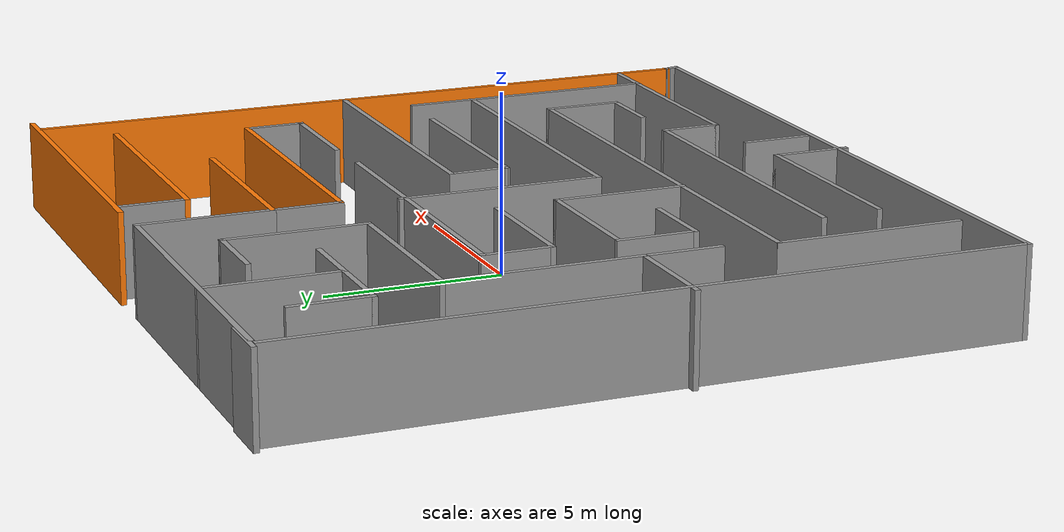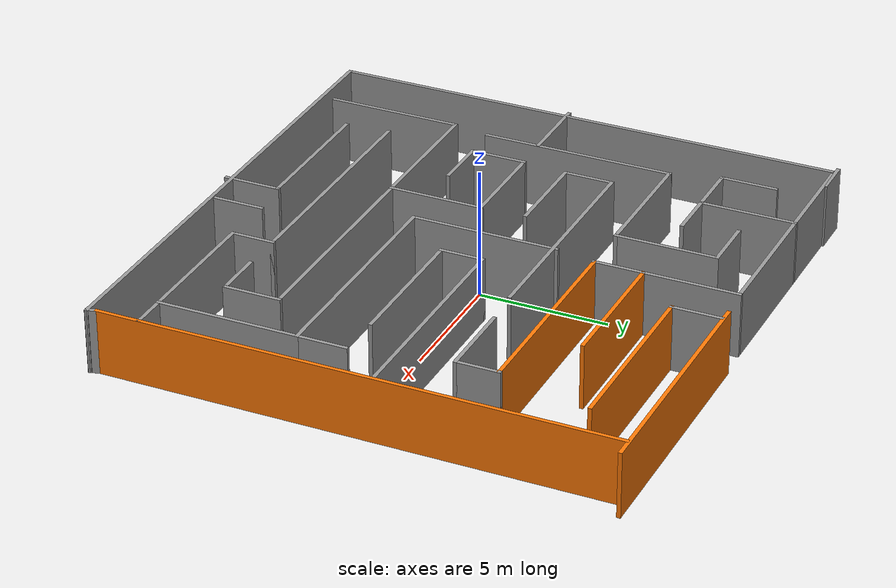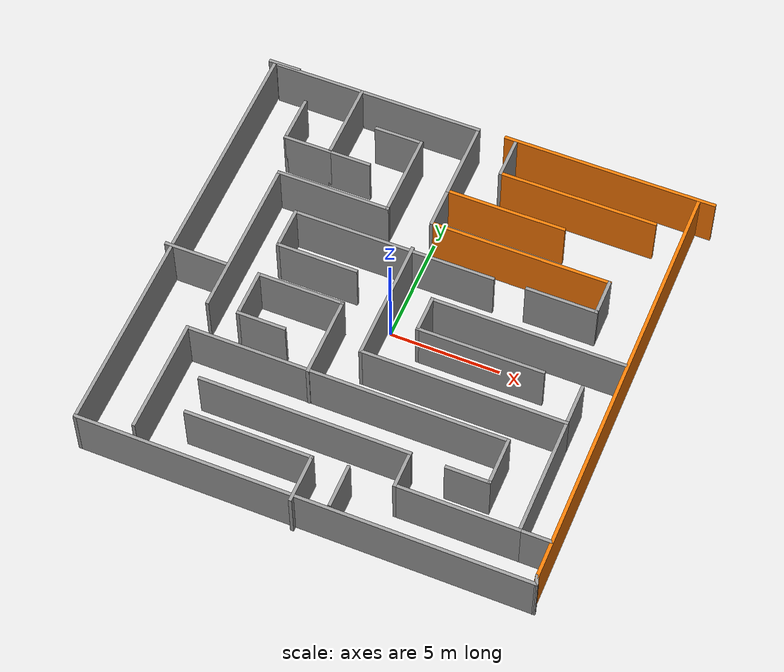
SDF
<?xml version='1.0'?>
<sdf version='1.7'>
  <model name='Untitled'>
    <pose>0.494496 -0.131558 0 0 -0 0</pose>
    <link name='Wall_10'>
      <collision name='Wall_10_Collision'>
        <geometry>
          <box>
            <size>20.25 0.15 2.5</size>
          </box>
        </geometry>
        <pose>0 0 1.25 0 -0 0</pose>
      </collision>
      <visual name='Wall_10_Visual'>
        <pose>0 0 1.25 0 -0 0</pose>
        <geometry>
          <box>
            <size>20.25 0.15 2.5</size>
          </box>
        </geometry>
        <material>
          <script>
            <uri>file://media/materials/scripts/gazebo.material</uri>
            <name>Gazebo/Grey</name>
          </script>
          <ambient>1 1 1 1</ambient>
        </material>
        <meta>
          <layer>0</layer>
        </meta>
      </visual>
      <pose>-0.173601 -9.90193 0 0 -0 3.14159</pose>
    </link>
    <link name='Wall_11'>
      <collision name='Wall_11_Collision'>
        <geometry>
          <box>
            <size>20 0.15 2.5</size>
          </box>
        </geometry>
        <pose>0 0 1.25 0 -0 0</pose>
      </collision>
      <visual name='Wall_11_Visual'>
        <pose>0 0 1.25 0 -0 0</pose>
        <geometry>
          <box>
            <size>20 0.15 2.5</size>
          </box>
        </geometry>
        <material>
          <script>
            <uri>file://media/materials/scripts/gazebo.material</uri>
            <name>Gazebo/Grey</name>
          </script>
          <ambient>1 1 1 1</ambient>
        </material>
        <meta>
          <layer>0</layer>
        </meta>
      </visual>
      <pose>-10.2236 0.023072 0 0 -0 1.5708</pose>
    </link>
    <link name='Wall_13'>
      <collision name='Wall_13_Collision'>
        <geometry>
          <box>
            <size>1.5 0.15 2.5</size>
          </box>
        </geometry>
        <pose>0 0 1.25 0 -0 0</pose>
      </collision>
      <visual name='Wall_13_Visual'>
        <pose>0 0 1.25 0 -0 0</pose>
        <geometry>
          <box>
            <size>1.5 0.15 2.5</size>
          </box>
        </geometry>
        <material>
          <script>
            <uri>file://media/materials/scripts/gazebo.material</uri>
            <name>Gazebo/Grey</name>
          </script>
          <ambient>1 1 1 1</ambient>
        </material>
        <meta>
          <layer>0</layer>
        </meta>
      </visual>
      <pose>-9.77571 10.1069 0 0 -0 0</pose>
    </link>
    <link name='Wall_15'>
      <collision name='Wall_15_Collision'>
        <geometry>
          <box>
            <size>3.75 0.15 2.5</size>
          </box>
        </geometry>
        <pose>0 0 1.25 0 -0 0</pose>
      </collision>
      <visual name='Wall_15_Visual'>
        <pose>0 0 1.25 0 -0 0</pose>
        <geometry>
          <box>
            <size>3.75 0.15 2.5</size>
          </box>
        </geometry>
        <material>
          <script>
            <uri>file://media/materials/scripts/gazebo.material</uri>
            <name>Gazebo/Grey</name>
          </script>
          <ambient>1 1 1 1</ambient>
        </material>
        <meta>
          <layer>0</layer>
        </meta>
      </visual>
      <pose>-5.99301 8.23615 0 0 -0 -1.5708</pose>
    </link>
    <link name='Wall_16'>
      <collision name='Wall_16_Collision'>
        <geometry>
          <box>
            <size>2 0.15 2.5</size>
          </box>
        </geometry>
        <pose>0 0 1.25 0 -0 0</pose>
      </collision>
      <visual name='Wall_16_Visual'>
        <pose>0 0 1.25 0 -0 0</pose>
        <geometry>
          <box>
            <size>2 0.15 2.5</size>
          </box>
        </geometry>
        <material>
          <script>
            <uri>file://media/materials/scripts/gazebo.material</uri>
            <name>Gazebo/Grey</name>
          </script>
          <ambient>1 1 1 1</ambient>
        </material>
        <meta>
          <layer>0</layer>
        </meta>
      </visual>
      <pose>-5.06801 6.43615 0 0 -0 0</pose>
    </link>
    <link name='Wall_18'>
      <collision name='Wall_18_Collision'>
        <geometry>
          <box>
            <size>2.25 0.15 2.5</size>
          </box>
        </geometry>
        <pose>0 0 1.25 0 -0 0</pose>
      </collision>
      <visual name='Wall_18_Visual'>
        <pose>0 0 1.25 0 -0 0</pose>
        <geometry>
          <box>
            <size>2.25 0.15 2.5</size>
          </box>
        </geometry>
        <material>
          <script>
            <uri>file://media/materials/scripts/gazebo.material</uri>
            <name>Gazebo/Grey</name>
          </script>
          <ambient>1 1 1 1</ambient>
        </material>
        <meta>
          <layer>0</layer>
        </meta>
      </visual>
      <pose>-7.04301 6.43615 0 0 -0 3.14159</pose>
    </link>
    <link name='Wall_19'>
      <collision name='Wall_19_Collision'>
        <geometry>
          <box>
            <size>2.25 0.15 2.5</size>
          </box>
        </geometry>
        <pose>0 0 1.25 0 -0 0</pose>
      </collision>
      <visual name='Wall_19_Visual'>
        <pose>0 0 1.25 0 -0 0</pose>
        <geometry>
          <box>
            <size>2.25 0.15 2.5</size>
          </box>
        </geometry>
        <material>
          <script>
            <uri>file://media/materials/scripts/gazebo.material</uri>
            <name>Gazebo/Grey</name>
          </script>
          <ambient>1 1 1 1</ambient>
        </material>
        <meta>
          <layer>0</layer>
        </meta>
      </visual>
      <pose>-8.09301 7.48615 0 0 -0 1.5708</pose>
    </link>
    <link name='Wall_21'>
      <collision name='Wall_21_Collision'>
        <geometry>
          <box>
            <size>2.25 0.15 2.5</size>
          </box>
        </geometry>
        <pose>0 0 1.25 0 -0 0</pose>
      </collision>
      <visual name='Wall_21_Visual'>
        <pose>0 0 1.25 0 -0 0</pose>
        <geometry>
          <box>
            <size>2.25 0.15 2.5</size>
          </box>
        </geometry>
        <material>
          <script>
            <uri>file://media/materials/scripts/gazebo.material</uri>
            <name>Gazebo/Grey</name>
          </script>
          <ambient>1 1 1 1</ambient>
        </material>
        <meta>
          <layer>0</layer>
        </meta>
      </visual>
      <pose>-3.52787 8.40873 0 0 -0 0</pose>
    </link>
    <link name='Wall_22'>
      <collision name='Wall_22_Collision'>
        <geometry>
          <box>
            <size>4 0.15 2.5</size>
          </box>
        </geometry>
        <pose>0 0 1.25 0 -0 0</pose>
      </collision>
      <visual name='Wall_22_Visual'>
        <pose>0 0 1.25 0 -0 0</pose>
        <geometry>
          <box>
            <size>4 0.15 2.5</size>
          </box>
        </geometry>
        <material>
          <script>
            <uri>file://media/materials/scripts/gazebo.material</uri>
            <name>Gazebo/Grey</name>
          </script>
          <ambient>1 1 1 1</ambient>
        </material>
        <meta>
          <layer>0</layer>
        </meta>
      </visual>
      <pose>-2.47787 6.48373 0 0 -0 -1.5708</pose>
    </link>
    <link name='Wall_23'>
      <collision name='Wall_23_Collision'>
        <geometry>
          <box>
            <size>5.25 0.15 2.5</size>
          </box>
        </geometry>
        <pose>0 0 1.25 0 -0 0</pose>
      </collision>
      <visual name='Wall_23_Visual'>
        <pose>0 0 1.25 0 -0 0</pose>
        <geometry>
          <box>
            <size>5.25 0.15 2.5</size>
          </box>
        </geometry>
        <material>
          <script>
            <uri>file://media/materials/scripts/gazebo.material</uri>
            <name>Gazebo/Grey</name>
          </script>
          <ambient>1 1 1 1</ambient>
        </material>
        <meta>
          <layer>0</layer>
        </meta>
      </visual>
      <pose>-5.02787 4.55873 0 0 -0 3.14159</pose>
    </link>
    <link name='Wall_24'>
      <collision name='Wall_24_Collision'>
        <geometry>
          <box>
            <size>7.5 0.15 2.5</size>
          </box>
        </geometry>
        <pose>0 0 1.25 0 -0 0</pose>
      </collision>
      <visual name='Wall_24_Visual'>
        <pose>0 0 1.25 0 -0 0</pose>
        <geometry>
          <box>
            <size>7.5 0.15 2.5</size>
          </box>
        </geometry>
        <material>
          <script>
            <uri>file://media/materials/scripts/gazebo.material</uri>
            <name>Gazebo/Grey</name>
          </script>
          <ambient>1 1 1 1</ambient>
        </material>
        <meta>
          <layer>0</layer>
        </meta>
      </visual>
      <pose>-7.57787 0.883734 0 0 -0 -1.5708</pose>
    </link>
    <link name='Wall_28'>
      <collision name='Wall_28_Collision'>
        <geometry>
          <box>
            <size>3 0.15 2.5</size>
          </box>
        </geometry>
        <pose>0 0 1.25 0 -0 0</pose>
      </collision>
      <visual name='Wall_28_Visual'>
        <pose>0 0 1.25 0 -0 0</pose>
        <geometry>
          <box>
            <size>3 0.15 2.5</size>
          </box>
        </geometry>
        <material>
          <script>
            <uri>file://media/materials/scripts/gazebo.material</uri>
            <name>Gazebo/Grey</name>
          </script>
          <ambient>1 1 1 1</ambient>
        </material>
        <meta>
          <layer>0</layer>
        </meta>
      </visual>
      <pose>-9.04542 -0.718927 0 0 -0 3.14159</pose>
    </link>
    <link name='Wall_3'>
      <collision name='Wall_3_Collision'>
        <geometry>
          <box>
            <size>9.75 0.15 2.5</size>
          </box>
        </geometry>
        <pose>0 0 1.25 0 -0 0</pose>
      </collision>
      <visual name='Wall_3_Visual'>
        <pose>0 0 1.25 0 -0 0</pose>
        <geometry>
          <box>
            <size>9.75 0.15 2.5</size>
          </box>
        </geometry>
        <material>
          <script>
            <uri>file://media/materials/scripts/gazebo.material</uri>
            <name>Gazebo/Grey</name>
          </script>
          <ambient>1 1 1 1</ambient>
        </material>
        <meta>
          <layer>0</layer>
        </meta>
      </visual>
      <pose>-5.22616 10.0361 0 0 -0 0</pose>
    </link>
    <link name='Wall_31'>
      <collision name='Wall_31_Collision'>
        <geometry>
          <box>
            <size>3.75 0.15 2.5</size>
          </box>
        </geometry>
        <pose>0 0 1.25 0 -0 0</pose>
      </collision>
      <visual name='Wall_31_Visual'>
        <pose>0 0 1.25 0 -0 0</pose>
        <geometry>
          <box>
            <size>3.75 0.15 2.5</size>
          </box>
        </geometry>
        <material>
          <script>
            <uri>file://media/materials/scripts/gazebo.material</uri>
            <name>Gazebo/Grey</name>
          </script>
          <ambient>1 1 1 1</ambient>
        </material>
        <meta>
          <layer>0</layer>
        </meta>
      </visual>
      <pose>-0.426163 8.23615 0 0 -0 -1.5708</pose>
    </link>
    <link name='Wall_32'>
      <collision name='Wall_32_Collision'>
        <geometry>
          <box>
            <size>5.5 0.15 2.5</size>
          </box>
        </geometry>
        <pose>0 0 1.25 0 -0 0</pose>
      </collision>
      <visual name='Wall_32_Visual'>
        <pose>0 0 1.25 0 -0 0</pose>
        <geometry>
          <box>
            <size>5.5 0.15 2.5</size>
          </box>
        </geometry>
        <material>
          <script>
            <uri>file://media/materials/scripts/gazebo.material</uri>
            <name>Gazebo/Grey</name>
          </script>
          <ambient>0.996078 0.47451 0.0196078 1</ambient>
        </material>
        <meta>
          <layer>0</layer>
        </meta>
      </visual>
      <pose>2.24884 6.43615 0 0 -0 0</pose>
    </link>
    <link name='Wall_34'>
      <collision name='Wall_34_Collision'>
        <geometry>
          <box>
            <size>2 0.15 2.5</size>
          </box>
        </geometry>
        <pose>0 0 1.25 0 -0 0</pose>
      </collision>
      <visual name='Wall_34_Visual'>
        <pose>0 0 1.25 0 -0 0</pose>
        <geometry>
          <box>
            <size>2 0.15 2.5</size>
          </box>
        </geometry>
        <material>
          <script>
            <uri>file://media/materials/scripts/gazebo.material</uri>
            <name>Gazebo/Grey</name>
          </script>
          <ambient>1 1 1 1</ambient>
        </material>
        <meta>
          <layer>0</layer>
        </meta>
      </visual>
      <pose>-0.426163 5.51115 0 0 -0 -1.5708</pose>
    </link>
    <link name='Wall_37'>
      <collision name='Wall_37_Collision'>
        <geometry>
          <box>
            <size>8.25 0.15 2.5</size>
          </box>
        </geometry>
        <pose>0 0 1.25 0 -0 0</pose>
      </collision>
      <visual name='Wall_37_Visual'>
        <pose>0 0 1.25 0 -0 0</pose>
        <geometry>
          <box>
            <size>8.25 0.15 2.5</size>
          </box>
        </geometry>
        <material>
          <script>
            <uri>file://media/materials/scripts/gazebo.material</uri>
            <name>Gazebo/Grey</name>
          </script>
          <ambient>0.996078 0.47451 0.0196078 1</ambient>
        </material>
        <meta>
          <layer>0</layer>
        </meta>
      </visual>
      <pose>3.62384 4.58615 0 0 -0 0</pose>
    </link>
    <link name='Wall_38'>
      <collision name='Wall_38_Collision'>
        <geometry>
          <box>
            <size>1.75 0.15 2.5</size>
          </box>
        </geometry>
        <pose>0 0 1.25 0 -0 0</pose>
      </collision>
      <visual name='Wall_38_Visual'>
        <pose>0 0 1.25 0 -0 0</pose>
        <geometry>
          <box>
            <size>1.75 0.15 2.5</size>
          </box>
        </geometry>
        <material>
          <script>
            <uri>file://media/materials/scripts/gazebo.material</uri>
            <name>Gazebo/Grey</name>
          </script>
          <ambient>1 1 1 1</ambient>
        </material>
        <meta>
          <layer>0</layer>
        </meta>
      </visual>
      <pose>7.67384 3.78615 0 0 -0 -1.5708</pose>
    </link>
    <link name='Wall_39'>
      <collision name='Wall_39_Collision'>
        <geometry>
          <box>
            <size>3.25 0.15 2.5</size>
          </box>
        </geometry>
        <pose>0 0 1.25 0 -0 0</pose>
      </collision>
      <visual name='Wall_39_Visual'>
        <pose>0 0 1.25 0 -0 0</pose>
        <geometry>
          <box>
            <size>3.25 0.15 2.5</size>
          </box>
        </geometry>
        <material>
          <script>
            <uri>file://media/materials/scripts/gazebo.material</uri>
            <name>Gazebo/Grey</name>
          </script>
          <ambient>1 1 1 1</ambient>
        </material>
        <meta>
          <layer>0</layer>
        </meta>
      </visual>
      <pose>6.12384 2.98615 0 0 -0 3.14159</pose>
    </link>
    <link name='Wall_41'>
      <collision name='Wall_41_Collision'>
        <geometry>
          <box>
            <size>3.75 0.15 2.5</size>
          </box>
        </geometry>
        <pose>0 0 1.25 0 -0 0</pose>
      </collision>
      <visual name='Wall_41_Visual'>
        <pose>0 0 1.25 0 -0 0</pose>
        <geometry>
          <box>
            <size>3.75 0.15 2.5</size>
          </box>
        </geometry>
        <material>
          <script>
            <uri>file://media/materials/scripts/gazebo.material</uri>
            <name>Gazebo/Grey</name>
          </script>
          <ambient>1 1 1 1</ambient>
        </material>
        <meta>
          <layer>0</layer>
        </meta>
      </visual>
      <pose>-4.25516 1.05 0 0 -0 3.14159</pose>
    </link>
    <link name='Wall_42'>
      <collision name='Wall_42_Collision'>
        <geometry>
          <box>
            <size>2 0.15 2.5</size>
          </box>
        </geometry>
        <pose>0 0 1.25 0 -0 0</pose>
      </collision>
      <visual name='Wall_42_Visual'>
        <pose>0 0 1.25 0 -0 0</pose>
        <geometry>
          <box>
            <size>2 0.15 2.5</size>
          </box>
        </geometry>
        <material>
          <script>
            <uri>file://media/materials/scripts/gazebo.material</uri>
            <name>Gazebo/Grey</name>
          </script>
          <ambient>1 1 1 1</ambient>
        </material>
        <meta>
          <layer>0</layer>
        </meta>
      </visual>
      <pose>-6.05516 1.975 0 0 -0 1.5708</pose>
    </link>
    <link name='Wall_43'>
      <collision name='Wall_43_Collision'>
        <geometry>
          <box>
            <size>9.25 0.15 2.5</size>
          </box>
        </geometry>
        <pose>0 0 1.25 0 -0 0</pose>
      </collision>
      <visual name='Wall_43_Visual'>
        <pose>0 0 1.25 0 -0 0</pose>
        <geometry>
          <box>
            <size>9.25 0.15 2.5</size>
          </box>
        </geometry>
        <material>
          <script>
            <uri>file://media/materials/scripts/gazebo.material</uri>
            <name>Gazebo/Grey</name>
          </script>
          <ambient>1 1 1 1</ambient>
        </material>
        <meta>
          <layer>0</layer>
        </meta>
      </visual>
      <pose>-1.50516 2.9 0 0 -0 0</pose>
    </link>
    <link name='Wall_45'>
      <collision name='Wall_45_Collision'>
        <geometry>
          <box>
            <size>5.75 0.15 2.5</size>
          </box>
        </geometry>
        <pose>0 0 1.25 0 -0 0</pose>
      </collision>
      <visual name='Wall_45_Visual'>
        <pose>0 0 1.25 0 -0 0</pose>
        <geometry>
          <box>
            <size>5.75 0.15 2.5</size>
          </box>
        </geometry>
        <material>
          <script>
            <uri>file://media/materials/scripts/gazebo.material</uri>
            <name>Gazebo/Grey</name>
          </script>
          <ambient>1 1 1 1</ambient>
        </material>
        <meta>
          <layer>0</layer>
        </meta>
      </visual>
      <pose>-0.686232 0.231197 0 0 -0 -1.5708</pose>
    </link>
    <link name='Wall_46'>
      <collision name='Wall_46_Collision'>
        <geometry>
          <box>
            <size>9.25 0.15 2.5</size>
          </box>
        </geometry>
        <pose>0 0 1.25 0 -0 0</pose>
      </collision>
      <visual name='Wall_46_Visual'>
        <pose>0 0 1.25 0 -0 0</pose>
        <geometry>
          <box>
            <size>9.25 0.15 2.5</size>
          </box>
        </geometry>
        <material>
          <script>
            <uri>file://media/materials/scripts/gazebo.material</uri>
            <name>Gazebo/Grey</name>
          </script>
          <ambient>1 1 1 1</ambient>
        </material>
        <meta>
          <layer>0</layer>
        </meta>
      </visual>
      <pose>3.86377 -2.5688 0 0 -0 0</pose>
    </link>
    <link name='Wall_47'>
      <collision name='Wall_47_Collision'>
        <geometry>
          <box>
            <size>2 0.15 2.5</size>
          </box>
        </geometry>
        <pose>0 0 1.25 0 -0 0</pose>
      </collision>
      <visual name='Wall_47_Visual'>
        <pose>0 0 1.25 0 -0 0</pose>
        <geometry>
          <box>
            <size>2 0.15 2.5</size>
          </box>
        </geometry>
        <material>
          <script>
            <uri>file://media/materials/scripts/gazebo.material</uri>
            <name>Gazebo/Grey</name>
          </script>
          <ambient>1 1 1 1</ambient>
        </material>
        <meta>
          <layer>0</layer>
        </meta>
      </visual>
      <pose>8.41377 -1.6438 0 0 -0 1.5708</pose>
    </link>
    <link name='Wall_49'>
      <collision name='Wall_49_Collision'>
        <geometry>
          <box>
            <size>5.5 0.15 2.5</size>
          </box>
        </geometry>
        <pose>0 0 1.25 0 -0 0</pose>
      </collision>
      <visual name='Wall_49_Visual'>
        <pose>0 0 1.25 0 -0 0</pose>
        <geometry>
          <box>
            <size>5.5 0.15 2.5</size>
          </box>
        </geometry>
        <material>
          <script>
            <uri>file://media/materials/scripts/gazebo.material</uri>
            <name>Gazebo/Grey</name>
          </script>
          <ambient>1 1 1 1</ambient>
        </material>
        <meta>
          <layer>0</layer>
        </meta>
      </visual>
      <pose>8.41377 -5.2438 0 0 -0 -1.5708</pose>
    </link>
    <link name='Wall_5'>
      <collision name='Wall_5_Collision'>
        <geometry>
          <box>
            <size>9.75 0.15 2.5</size>
          </box>
        </geometry>
        <pose>0 0 1.25 0 -0 0</pose>
      </collision>
      <visual name='Wall_5_Visual'>
        <pose>0 0 1.25 0 -0 0</pose>
        <geometry>
          <box>
            <size>9.75 0.15 2.5</size>
          </box>
        </geometry>
        <material>
          <script>
            <uri>file://media/materials/scripts/gazebo.material</uri>
            <name>Gazebo/Grey</name>
          </script>
          <ambient>0.996078 0.47451 0.0196078 1</ambient>
        </material>
        <meta>
          <layer>0</layer>
        </meta>
      </visual>
      <pose>5.67042 10.1069 0 0 -0 0</pose>
    </link>
    <link name='Wall_50'>
      <collision name='Wall_50_Collision'>
        <geometry>
          <box>
            <size>1.5 0.15 2.5</size>
          </box>
        </geometry>
        <pose>0 0 1.25 0 -0 0</pose>
      </collision>
      <visual name='Wall_50_Visual'>
        <pose>0 0 1.25 0 -0 0</pose>
        <geometry>
          <box>
            <size>1.5 0.15 2.5</size>
          </box>
        </geometry>
        <material>
          <script>
            <uri>file://media/materials/scripts/gazebo.material</uri>
            <name>Gazebo/Grey</name>
          </script>
          <ambient>1 1 1 1</ambient>
        </material>
        <meta>
          <layer>0</layer>
        </meta>
      </visual>
      <pose>9.08877 -7.9188 0 0 -0 0</pose>
    </link>
    <link name='Wall_52'>
      <collision name='Wall_52_Collision'>
        <geometry>
          <box>
            <size>5.5 0.15 2.5</size>
          </box>
        </geometry>
        <pose>0 0 1.25 0 -0 0</pose>
      </collision>
      <visual name='Wall_52_Visual'>
        <pose>0 0 1.25 0 -0 0</pose>
        <geometry>
          <box>
            <size>5.5 0.15 2.5</size>
          </box>
        </geometry>
        <material>
          <script>
            <uri>file://media/materials/scripts/gazebo.material</uri>
            <name>Gazebo/Grey</name>
          </script>
          <ambient>1 1 1 1</ambient>
        </material>
        <meta>
          <layer>0</layer>
        </meta>
      </visual>
      <pose>5.73877 -7.9188 0 0 -0 3.14159</pose>
    </link>
    <link name='Wall_53'>
      <collision name='Wall_53_Collision'>
        <geometry>
          <box>
            <size>1.75 0.15 2.5</size>
          </box>
        </geometry>
        <pose>0 0 1.25 0 -0 0</pose>
      </collision>
      <visual name='Wall_53_Visual'>
        <pose>0 0 1.25 0 -0 0</pose>
        <geometry>
          <box>
            <size>1.75 0.15 2.5</size>
          </box>
        </geometry>
        <material>
          <script>
            <uri>file://media/materials/scripts/gazebo.material</uri>
            <name>Gazebo/Grey</name>
          </script>
          <ambient>1 1 1 1</ambient>
        </material>
        <meta>
          <layer>0</layer>
        </meta>
      </visual>
      <pose>3.06377 -7.1188 0 0 -0 1.5708</pose>
    </link>
    <link name='Wall_54'>
      <collision name='Wall_54_Collision'>
        <geometry>
          <box>
            <size>9.5 0.15 2.5</size>
          </box>
        </geometry>
        <pose>0 0 1.25 0 -0 0</pose>
      </collision>
      <visual name='Wall_54_Visual'>
        <pose>0 0 1.25 0 -0 0</pose>
        <geometry>
          <box>
            <size>9.5 0.15 2.5</size>
          </box>
        </geometry>
        <material>
          <script>
            <uri>file://media/materials/scripts/gazebo.material</uri>
            <name>Gazebo/Grey</name>
          </script>
          <ambient>1 1 1 1</ambient>
        </material>
        <meta>
          <layer>0</layer>
        </meta>
      </visual>
      <pose>-1.61123 -6.3188 0 0 -0 3.14159</pose>
    </link>
    <link name='Wall_56'>
      <collision name='Wall_56_Collision'>
        <geometry>
          <box>
            <size>5.75 0.15 2.5</size>
          </box>
        </geometry>
        <pose>0 0 1.25 0 -0 0</pose>
      </collision>
      <visual name='Wall_56_Visual'>
        <pose>0 0 1.25 0 -0 0</pose>
        <geometry>
          <box>
            <size>5.75 0.15 2.5</size>
          </box>
        </geometry>
        <material>
          <script>
            <uri>file://media/materials/scripts/gazebo.material</uri>
            <name>Gazebo/Grey</name>
          </script>
          <ambient>1 1 1 1</ambient>
        </material>
        <meta>
          <layer>0</layer>
        </meta>
      </visual>
      <pose>-3.33453 -8.0069 0 0 -0 0</pose>
    </link>
    <link name='Wall_57'>
      <collision name='Wall_57_Collision'>
        <geometry>
          <box>
            <size>2.25 0.15 2.5</size>
          </box>
        </geometry>
        <pose>0 0 1.25 0 -0 0</pose>
      </collision>
      <visual name='Wall_57_Visual'>
        <pose>0 0 1.25 0 -0 0</pose>
        <geometry>
          <box>
            <size>2.25 0.15 2.5</size>
          </box>
        </geometry>
        <material>
          <script>
            <uri>file://media/materials/scripts/gazebo.material</uri>
            <name>Gazebo/Grey</name>
          </script>
          <ambient>1 1 1 1</ambient>
        </material>
        <meta>
          <layer>0</layer>
        </meta>
      </visual>
      <pose>-0.534525 -9.0569 0 0 -0 -1.5708</pose>
    </link>
    <link name='Wall_59'>
      <collision name='Wall_59_Collision'>
        <geometry>
          <box>
            <size>2 0.15 2.5</size>
          </box>
        </geometry>
        <pose>0 0 1.25 0 -0 0</pose>
      </collision>
      <visual name='Wall_59_Visual'>
        <pose>0 0 1.25 0 -0 0</pose>
        <geometry>
          <box>
            <size>2 0.15 2.5</size>
          </box>
        </geometry>
        <material>
          <script>
            <uri>file://media/materials/scripts/gazebo.material</uri>
            <name>Gazebo/Grey</name>
          </script>
          <ambient>1 1 1 1</ambient>
        </material>
        <meta>
          <layer>0</layer>
        </meta>
      </visual>
      <pose>1.01194 -8.79039 0 0 -0 -1.5708</pose>
    </link>
    <link name='Wall_61'>
      <collision name='Wall_61_Collision'>
        <geometry>
          <box>
            <size>7.25 0.15 2.5</size>
          </box>
        </geometry>
        <pose>0 0 1.25 0 -0 0</pose>
      </collision>
      <visual name='Wall_61_Visual'>
        <pose>0 0 1.25 0 -0 0</pose>
        <geometry>
          <box>
            <size>7.25 0.15 2.5</size>
          </box>
        </geometry>
        <material>
          <script>
            <uri>file://media/materials/scripts/gazebo.material</uri>
            <name>Gazebo/Grey</name>
          </script>
          <ambient>0.996078 0.47451 0.0196078 1</ambient>
        </material>
        <meta>
          <layer>0</layer>
        </meta>
      </visual>
      <pose>4.89143 8.19646 0 0 -0 3.14159</pose>
    </link>
    <link name='Wall_62'>
      <collision name='Wall_62_Collision'>
        <geometry>
          <box>
            <size>2 0.15 2.5</size>
          </box>
        </geometry>
        <pose>0 0 1.25 0 -0 0</pose>
      </collision>
      <visual name='Wall_62_Visual'>
        <pose>0 0 1.25 0 -0 0</pose>
        <geometry>
          <box>
            <size>2 0.15 2.5</size>
          </box>
        </geometry>
        <material>
          <script>
            <uri>file://media/materials/scripts/gazebo.material</uri>
            <name>Gazebo/Grey</name>
          </script>
          <ambient>1 1 1 1</ambient>
        </material>
        <meta>
          <layer>0</layer>
        </meta>
      </visual>
      <pose>1.34143 9.12146 0 0 -0 1.5708</pose>
    </link>
    <link name='Wall_64'>
      <collision name='Wall_64_Collision'>
        <geometry>
          <box>
            <size>5.75 0.15 2.5</size>
          </box>
        </geometry>
        <pose>0 0 1.25 0 -0 0</pose>
      </collision>
      <visual name='Wall_64_Visual'>
        <pose>0 0 1.25 0 -0 0</pose>
        <geometry>
          <box>
            <size>5.75 0.15 2.5</size>
          </box>
        </geometry>
        <material>
          <script>
            <uri>file://media/materials/scripts/gazebo.material</uri>
            <name>Gazebo/Grey</name>
          </script>
          <ambient>1 1 1 1</ambient>
        </material>
        <meta>
          <layer>0</layer>
        </meta>
      </visual>
      <pose>3.8725 -0.64817 0 0 -0 3.14159</pose>
    </link>
    <link name='Wall_65'>
      <collision name='Wall_65_Collision'>
        <geometry>
          <box>
            <size>1.75 0.15 2.5</size>
          </box>
        </geometry>
        <pose>0 0 1.25 0 -0 0</pose>
      </collision>
      <visual name='Wall_65_Visual'>
        <pose>0 0 1.25 0 -0 0</pose>
        <geometry>
          <box>
            <size>1.75 0.15 2.5</size>
          </box>
        </geometry>
        <material>
          <script>
            <uri>file://media/materials/scripts/gazebo.material</uri>
            <name>Gazebo/Grey</name>
          </script>
          <ambient>1 1 1 1</ambient>
        </material>
        <meta>
          <layer>0</layer>
        </meta>
      </visual>
      <pose>1.0725 0.15183 0 0 -0 1.5708</pose>
    </link>
    <link name='Wall_66'>
      <collision name='Wall_66_Collision'>
        <geometry>
          <box>
            <size>8.75 0.15 2.5</size>
          </box>
        </geometry>
        <pose>0 0 1.25 0 -0 0</pose>
      </collision>
      <visual name='Wall_66_Visual'>
        <pose>0 0 1.25 0 -0 0</pose>
        <geometry>
          <box>
            <size>8.75 0.15 2.5</size>
          </box>
        </geometry>
        <material>
          <script>
            <uri>file://media/materials/scripts/gazebo.material</uri>
            <name>Gazebo/Grey</name>
          </script>
          <ambient>1 1 1 1</ambient>
        </material>
        <meta>
          <layer>0</layer>
        </meta>
      </visual>
      <pose>5.3725 0.95183 0 0 -0 0</pose>
    </link>
    <link name='Wall_68'>
      <collision name='Wall_68_Collision'>
        <geometry>
          <box>
            <size>5.25 0.15 2.5</size>
          </box>
        </geometry>
        <pose>0 0 1.25 0 -0 0</pose>
      </collision>
      <visual name='Wall_68_Visual'>
        <pose>0 0 1.25 0 -0 0</pose>
        <geometry>
          <box>
            <size>5.25 0.15 2.5</size>
          </box>
        </geometry>
        <material>
          <script>
            <uri>file://media/materials/scripts/gazebo.material</uri>
            <name>Gazebo/Grey</name>
          </script>
          <ambient>1 1 1 1</ambient>
        </material>
        <meta>
          <layer>0</layer>
        </meta>
      </visual>
      <pose>-7.8327 -6.80129 0 0 -0 1.5708</pose>
    </link>
    <link name='Wall_69'>
      <collision name='Wall_69_Collision'>
        <geometry>
          <box>
            <size>14.5 0.15 2.5</size>
          </box>
        </geometry>
        <pose>0 0 1.25 0 -0 0</pose>
      </collision>
      <visual name='Wall_69_Visual'>
        <pose>0 0 1.25 0 -0 0</pose>
        <geometry>
          <box>
            <size>14.5 0.15 2.5</size>
          </box>
        </geometry>
        <material>
          <script>
            <uri>file://media/materials/scripts/gazebo.material</uri>
            <name>Gazebo/Grey</name>
          </script>
          <ambient>1 1 1 1</ambient>
        </material>
        <meta>
          <layer>0</layer>
        </meta>
      </visual>
      <pose>-0.657695 -4.25129 0 0 -0 0</pose>
    </link>
    <link name='Wall_70'>
      <collision name='Wall_70_Collision'>
        <geometry>
          <box>
            <size>2.25 0.15 2.5</size>
          </box>
        </geometry>
        <pose>0 0 1.25 0 -0 0</pose>
      </collision>
      <visual name='Wall_70_Visual'>
        <pose>0 0 1.25 0 -0 0</pose>
        <geometry>
          <box>
            <size>2.25 0.15 2.5</size>
          </box>
        </geometry>
        <material>
          <script>
            <uri>file://media/materials/scripts/gazebo.material</uri>
            <name>Gazebo/Grey</name>
          </script>
          <ambient>1 1 1 1</ambient>
        </material>
        <meta>
          <layer>0</layer>
        </meta>
      </visual>
      <pose>6.51731 -5.30129 0 0 -0 -1.5708</pose>
    </link>
    <link name='Wall_71'>
      <collision name='Wall_71_Collision'>
        <geometry>
          <box>
            <size>2 0.15 2.5</size>
          </box>
        </geometry>
        <pose>0 0 1.25 0 -0 0</pose>
      </collision>
      <visual name='Wall_71_Visual'>
        <pose>0 0 1.25 0 -0 0</pose>
        <geometry>
          <box>
            <size>2 0.15 2.5</size>
          </box>
        </geometry>
        <material>
          <script>
            <uri>file://media/materials/scripts/gazebo.material</uri>
            <name>Gazebo/Grey</name>
          </script>
          <ambient>1 1 1 1</ambient>
        </material>
        <meta>
          <layer>0</layer>
        </meta>
      </visual>
      <pose>5.5923 -6.35129 0 0 -0 3.14159</pose>
    </link>
    <link name='Wall_73'>
      <collision name='Wall_73_Collision'>
        <geometry>
          <box>
            <size>2.25 0.15 2.5</size>
          </box>
        </geometry>
        <pose>0 0 1.25 0 -0 0</pose>
      </collision>
      <visual name='Wall_73_Visual'>
        <pose>0 0 1.25 0 -0 0</pose>
        <geometry>
          <box>
            <size>2.25 0.15 2.5</size>
          </box>
        </geometry>
        <material>
          <script>
            <uri>file://media/materials/scripts/gazebo.material</uri>
            <name>Gazebo/Grey</name>
          </script>
          <ambient>1 1 1 1</ambient>
        </material>
        <meta>
          <layer>0</layer>
        </meta>
      </visual>
      <pose>-5.13257 -2.77088 0 0 -0 3.14159</pose>
    </link>
    <link name='Wall_74'>
      <collision name='Wall_74_Collision'>
        <geometry>
          <box>
            <size>2.25 0.15 2.5</size>
          </box>
        </geometry>
        <pose>0 0 1.25 0 -0 0</pose>
      </collision>
      <visual name='Wall_74_Visual'>
        <pose>0 0 1.25 0 -0 0</pose>
        <geometry>
          <box>
            <size>2.25 0.15 2.5</size>
          </box>
        </geometry>
        <material>
          <script>
            <uri>file://media/materials/scripts/gazebo.material</uri>
            <name>Gazebo/Grey</name>
          </script>
          <ambient>1 1 1 1</ambient>
        </material>
        <meta>
          <layer>0</layer>
        </meta>
      </visual>
      <pose>-6.18257 -1.72088 0 0 -0 1.5708</pose>
    </link>
    <link name='Wall_75'>
      <collision name='Wall_75_Collision'>
        <geometry>
          <box>
            <size>4 0.15 2.5</size>
          </box>
        </geometry>
        <pose>0 0 1.25 0 -0 0</pose>
      </collision>
      <visual name='Wall_75_Visual'>
        <pose>0 0 1.25 0 -0 0</pose>
        <geometry>
          <box>
            <size>4 0.15 2.5</size>
          </box>
        </geometry>
        <material>
          <script>
            <uri>file://media/materials/scripts/gazebo.material</uri>
            <name>Gazebo/Grey</name>
          </script>
          <ambient>1 1 1 1</ambient>
        </material>
        <meta>
          <layer>0</layer>
        </meta>
      </visual>
      <pose>-4.25757 -0.670881 0 0 -0 0</pose>
    </link>
    <link name='Wall_78'>
      <collision name='Wall_78_Collision'>
        <geometry>
          <box>
            <size>3.75 0.15 2.5</size>
          </box>
        </geometry>
        <pose>0 0 1.25 0 -0 0</pose>
      </collision>
      <visual name='Wall_78_Visual'>
        <pose>0 0 1.25 0 -0 0</pose>
        <geometry>
          <box>
            <size>3.75 0.15 2.5</size>
          </box>
        </geometry>
        <material>
          <script>
            <uri>file://media/materials/scripts/gazebo.material</uri>
            <name>Gazebo/Grey</name>
          </script>
          <ambient>1 1 1 1</ambient>
        </material>
        <meta>
          <layer>0</layer>
        </meta>
      </visual>
      <pose>-2.33257 -2.47088 0 0 -0 -1.5708</pose>
    </link>
    <link name='Wall_8'>
      <collision name='Wall_8_Collision'>
        <geometry>
          <box>
            <size>19.75 0.15 2.5</size>
          </box>
        </geometry>
        <pose>0 0 1.25 0 -0 0</pose>
      </collision>
      <visual name='Wall_8_Visual'>
        <pose>0 0 1.25 0 -0 0</pose>
        <geometry>
          <box>
            <size>19.75 0.15 2.5</size>
          </box>
        </geometry>
        <material>
          <script>
            <uri>file://media/materials/scripts/gazebo.material</uri>
            <name>Gazebo/Grey</name>
          </script>
          <ambient>0.996078 0.47451 0.0196078 1</ambient>
        </material>
        <meta>
          <layer>0</layer>
        </meta>
      </visual>
      <pose>9.78581 0.236146 0 0 -0 -1.5708</pose>
    </link>
    <link name='Wall_9'>
      <collision name='Wall_9_Collision'>
        <geometry>
          <box>
            <size>0.5 0.15 2.5</size>
          </box>
        </geometry>
        <pose>0 0 1.25 0 -0 0</pose>
      </collision>
      <visual name='Wall_9_Visual'>
        <pose>0 0 1.25 0 -0 0</pose>
        <geometry>
          <box>
            <size>0.5 0.15 2.5</size>
          </box>
        </geometry>
        <material>
          <script>
            <uri>file://media/materials/scripts/gazebo.material</uri>
            <name>Gazebo/Grey</name>
          </script>
          <ambient>1 1 1 1</ambient>
        </material>
        <meta>
          <layer>0</layer>
        </meta>
      </visual>
      <pose>9.83111 -9.73289 0 0 -0 -1.309</pose>
    </link>
    <static>1</static>
  </model>
</sdf>
